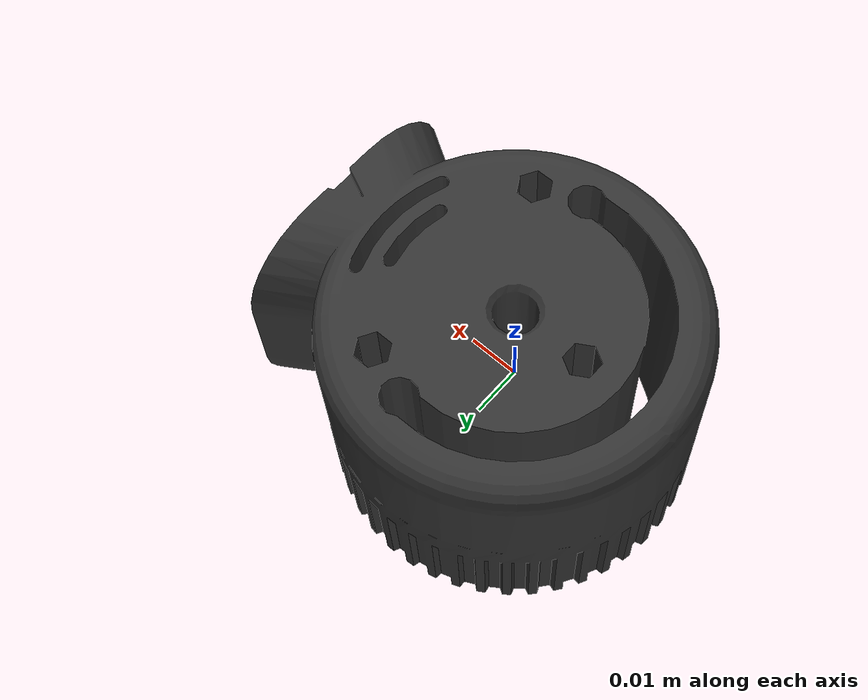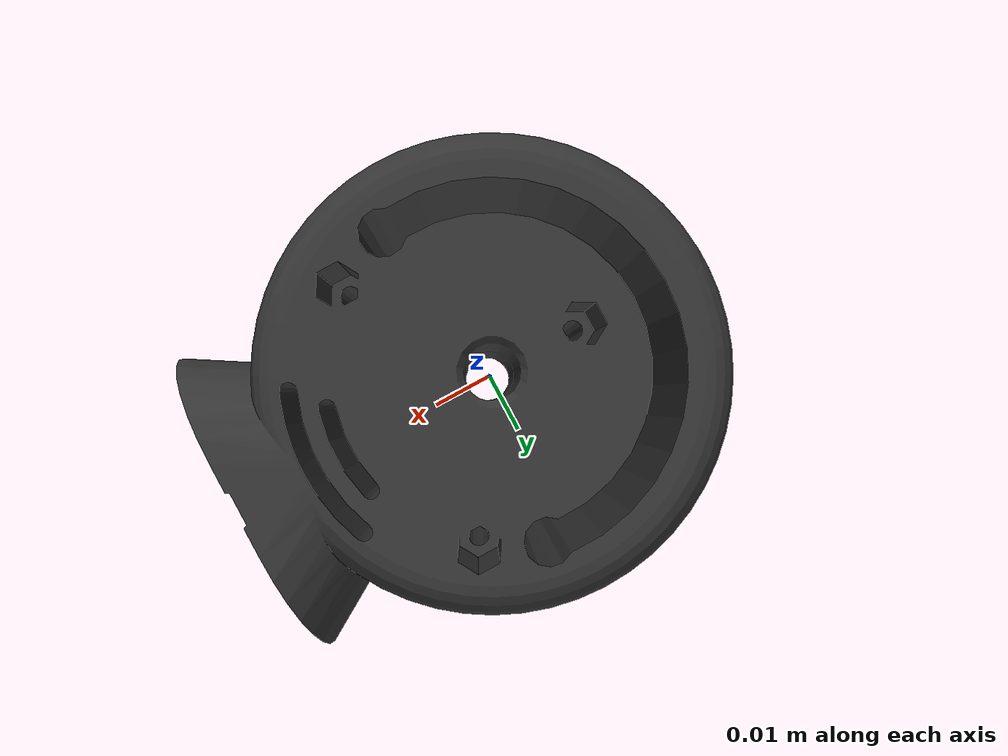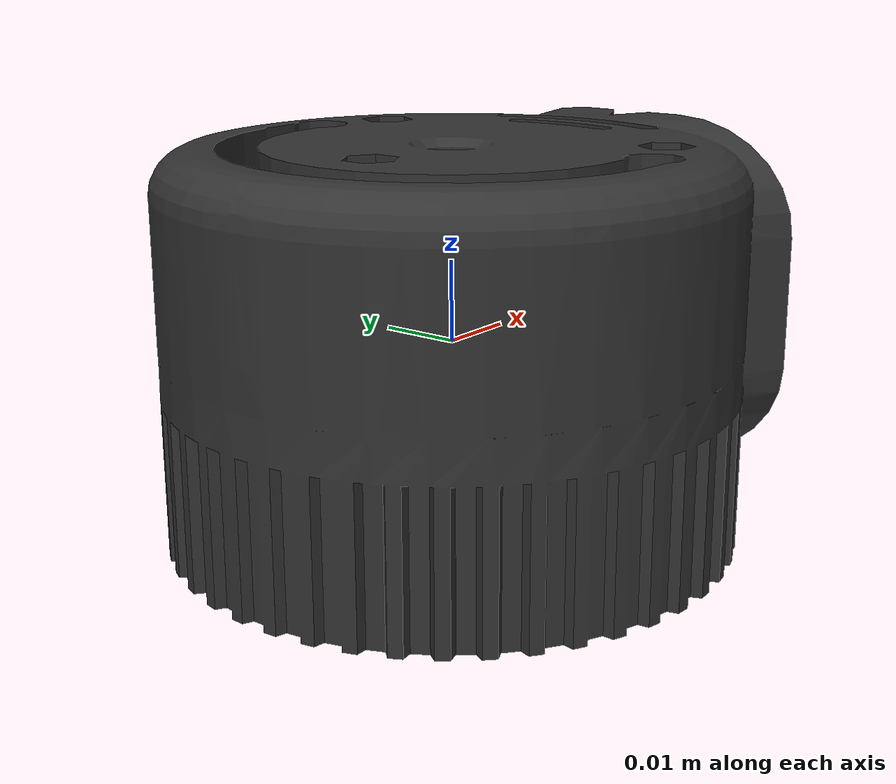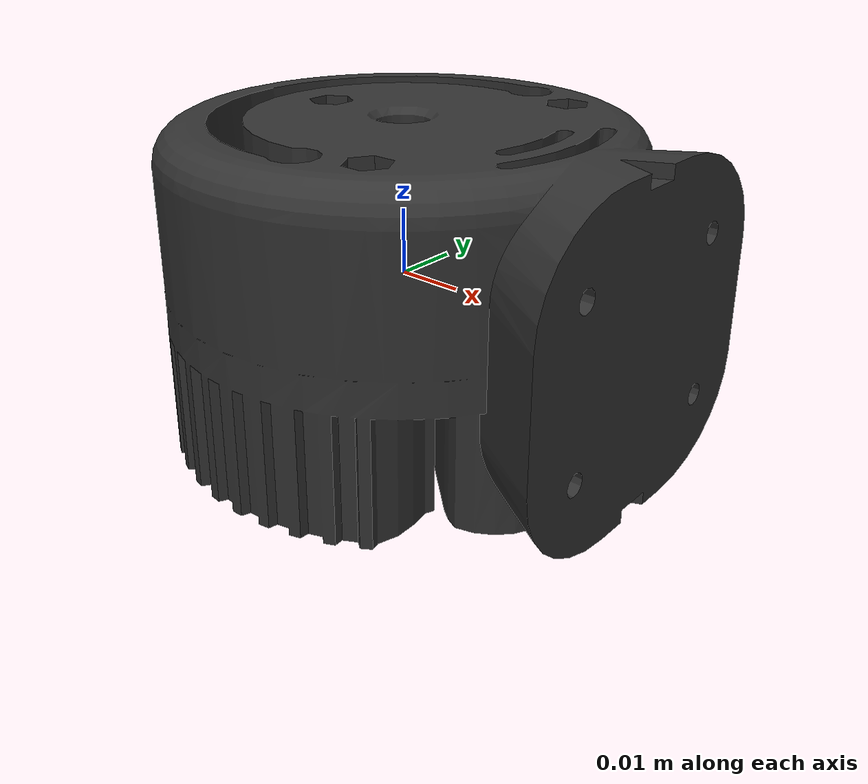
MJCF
<mujoco>
    <compiler meshdir="../meshes/Hand" />

    <include file="materials.xml" />

    <default>

        <default class="visual">
            <geom pos="0.06206 -0.00475 -0.05992" euler="90 -90 0" />
        </default>
    </default>

    <asset>
        <mesh name="Hand_body_visual" file="Hand_arm.STL" />
    </asset>

    <worldbody>
        <body name="Hand">
            <geom type="mesh" mesh="Hand_body_visual" class="visual" material="black" mass="0.1" />
        </body>
    </worldbody>
</mujoco>

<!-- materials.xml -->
<mujoco>

    <default>
        <mesh scale="0.001 0.001 0.001" />
        <geom contype="0" conaffinity="0" mass="0" />
    </default>

    <asset>
        <texture type="skybox" builtin="gradient" rgb1=".3 .5 .7" rgb2="1 1 1" width="32" height="512"/>
        <material name="blue" rgba="0.0 0.3 0.7 1" />
        <material name="black" rgba="0.2 0.2 0.2 1" />
        <material name="deep_black" rgba="0.1 0.1 0.1 1" />
        <material name="silver" rgba="0.5 0.5 0.5 1" />
        <material name="brown" rgba="1 0.7 0.5 1" />
    </asset>
</mujoco>
